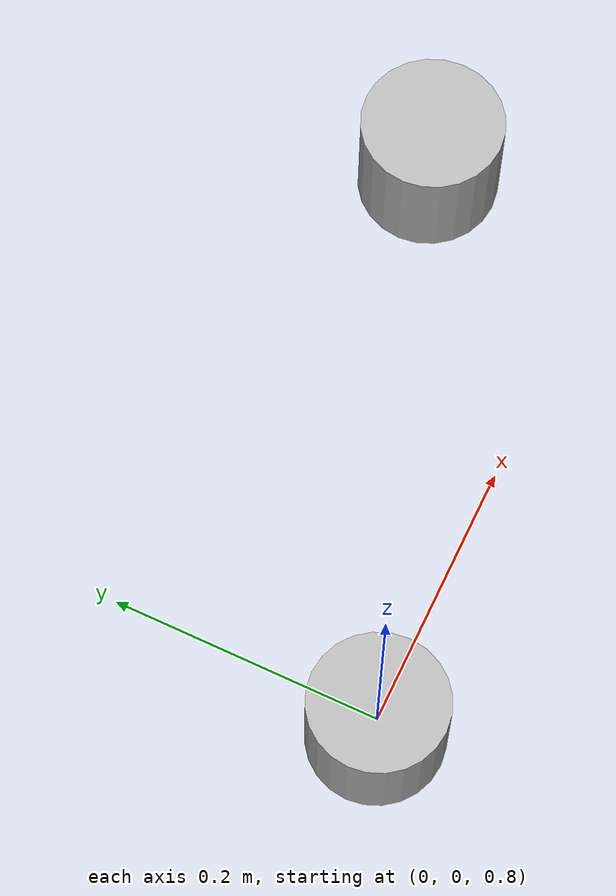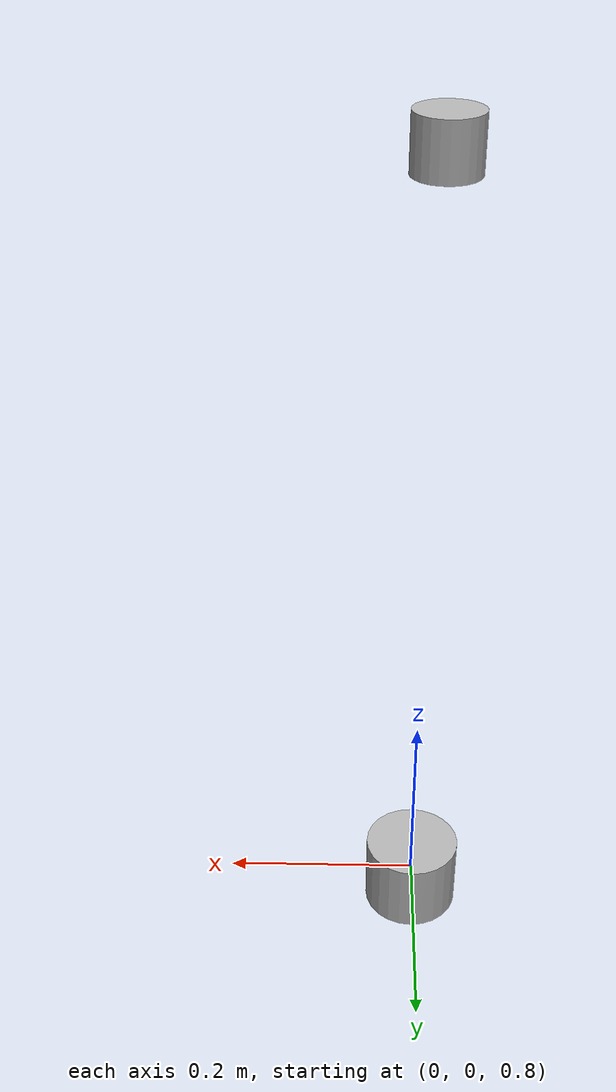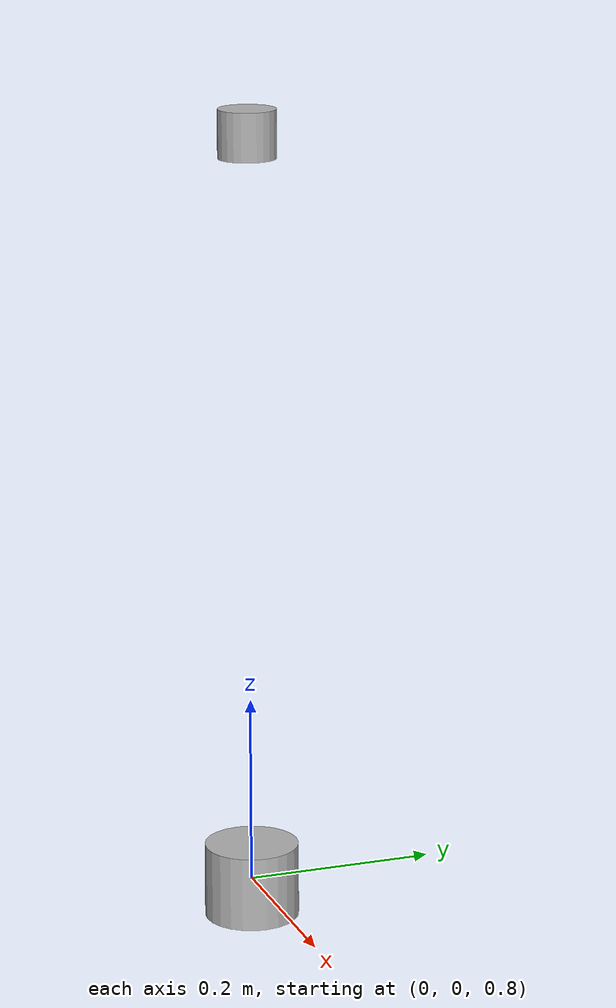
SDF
<?xml version="1.0" ?>
<sdf version="1.7">
  <model name="humanoid_lidar_sensor">
    <!-- LiDAR sensor configuration for humanoid robot -->
    <!-- Positioned on the torso/upper body for 360-degree navigation -->
    <link name="lidar_link">
      <pose>0.0 0.0 0.8 0 0 0</pose> <!-- Positioned at torso level -->
      <inertial>
        <mass>0.1</mass>
        <inertia>
          <ixx>0.0001</ixx>
          <ixy>0</ixy>
          <ixz>0</ixz>
          <iyy>0.0001</iyy>
          <iyz>0</iyz>
          <izz>0.0001</izz>
        </inertia>
      </inertial>

      <!-- LiDAR collision geometry -->
      <collision name="lidar_collision">
        <geometry>
          <cylinder>
            <radius>0.05</radius>
            <length>0.08</length>
          </cylinder>
        </geometry>
      </collision>

      <!-- LiDAR visual representation -->
      <visual name="lidar_visual">
        <geometry>
          <cylinder>
            <radius>0.05</radius>
            <length>0.08</length>
          </cylinder>
        </geometry>
        <material>
          <ambient>0.5 0.5 0.5 1</ambient>
          <diffuse>0.7 0.7 0.7 1</diffuse>
          <specular>0.1 0.1 0.1 1</specular>
        </material>
      </visual>

      <!-- LiDAR sensor definition -->
      <sensor name="humanoid_laser" type="ray">
        <pose>0 0 0 0 0 0</pose>
        <ray>
          <scan>
            <horizontal>
              <!-- 360-degree horizontal scan -->
              <samples>720</samples>
              <resolution>1</resolution>
              <min_angle>-3.14159</min_angle> <!-- -π radians = -180 degrees -->
              <max_angle>3.14159</max_angle>  <!-- π radians = 180 degrees -->
            </horizontal>
          </scan>
          <range>
            <!-- Range parameters for humanoid navigation -->
            <min>0.1</min>    <!-- Minimum detectable range (m) -->
            <max>10.0</max>   <!-- Maximum detectable range (m) -->
            <resolution>0.01</resolution> <!-- Resolution of range measurements (m) -->
          </range>
        </ray>
        <always_on>true</always_on>
        <update_rate>10</update_rate> <!-- 10 Hz update rate appropriate for navigation -->
        <plugin name="lidar_controller" filename="libgazebo_ros_ray_sensor.so">
          <ros>
            <namespace>/humanoid</namespace>
            <remapping>~/out:=scan</remapping>
          </ros>
          <output_type>sensor_msgs/LaserScan</output_type>
          <frame_name>lidar_link</frame_name>
        </plugin>
      </sensor>
    </link>

    <!-- Alternative LiDAR configuration for head-mounted sensor -->
    <link name="head_lidar_link">
      <pose>0.0 0.0 1.6 0 0 0</pose> <!-- Positioned at head level -->
      <inertial>
        <mass>0.1</mass>
        <inertia>
          <ixx>0.0001</ixx>
          <ixy>0</ixy>
          <ixz>0</ixz>
          <iyy>0.0001</iyy>
          <iyz>0</iyz>
          <izz>0.0001</izz>
        </inertia>
      </inertial>

      <!-- Head-mounted LiDAR collision geometry -->
      <collision name="head_lidar_collision">
        <geometry>
          <cylinder>
            <radius>0.03</radius>
            <length>0.05</length>
          </cylinder>
        </geometry>
      </collision>

      <!-- Head-mounted LiDAR visual representation -->
      <visual name="head_lidar_visual">
        <geometry>
          <cylinder>
            <radius>0.03</radius>
            <length>0.05</length>
          </cylinder>
        </geometry>
        <material>
          <ambient>0.5 0.5 0.5 1</ambient>
          <diffuse>0.7 0.7 0.7 1</diffuse>
          <specular>0.1 0.1 0.1 1</specular>
        </material>
      </visual>

      <!-- Head-mounted LiDAR sensor definition -->
      <sensor name="head_laser" type="ray">
        <pose>0 0 0 0 0 0</pose>
        <ray>
          <scan>
            <horizontal>
              <!-- 360-degree horizontal scan -->
              <samples>360</samples>
              <resolution>1</resolution>
              <min_angle>-3.14159</min_angle> <!-- -π radians = -180 degrees -->
              <max_angle>3.14159</max_angle>  <!-- π radians = 180 degrees -->
            </horizontal>
            <vertical>
              <!-- 20-degree vertical field of view for head-mounted sensor -->
              <samples>1</samples>
              <resolution>1</resolution>
              <min_angle>-0.1745</min_angle> <!-- -10 degrees in radians -->
              <max_angle>0.1745</max_angle>  <!-- 10 degrees in radians -->
            </vertical>
          </scan>
          <range>
            <!-- Range parameters for head-mounted sensor -->
            <min>0.1</min>    <!-- Minimum detectable range (m) -->
            <max>15.0</max>   <!-- Maximum detectable range (m) -->
            <resolution>0.01</resolution> <!-- Resolution of range measurements (m) -->
          </range>
        </ray>
        <always_on>true</always_on>
        <update_rate>5</update_rate> <!-- 5 Hz update rate for head sensor -->
        <plugin name="head_lidar_controller" filename="libgazebo_ros_ray_sensor.so">
          <ros>
            <namespace>/humanoid</namespace>
            <remapping>~/out:=head_scan</remapping>
          </ros>
          <output_type>sensor_msgs/LaserScan</output_type>
          <frame_name>head_lidar_link</frame_name>
        </plugin>
      </sensor>
    </link>

    <!-- Joint to connect LiDAR to the robot (example connection to torso) -->
    <joint name="lidar_to_torso" type="fixed">
      <parent>torso_link</parent> <!-- This would connect to actual torso link in full robot model -->
      <child>lidar_link</child>
      <pose>0.1 0 0 0 0 0</pose> <!-- Offset slightly forward on torso -->
    </joint>

    <!-- Joint to connect head LiDAR to the robot -->
    <joint name="head_lidar_to_head" type="fixed">
      <parent>head_link</parent> <!-- This would connect to actual head link in full robot model -->
      <child>head_lidar_link</child>
      <pose>0.05 0 0 0 0 0</pose> <!-- Offset slightly forward on head -->
    </joint>
  </model>
</sdf>
